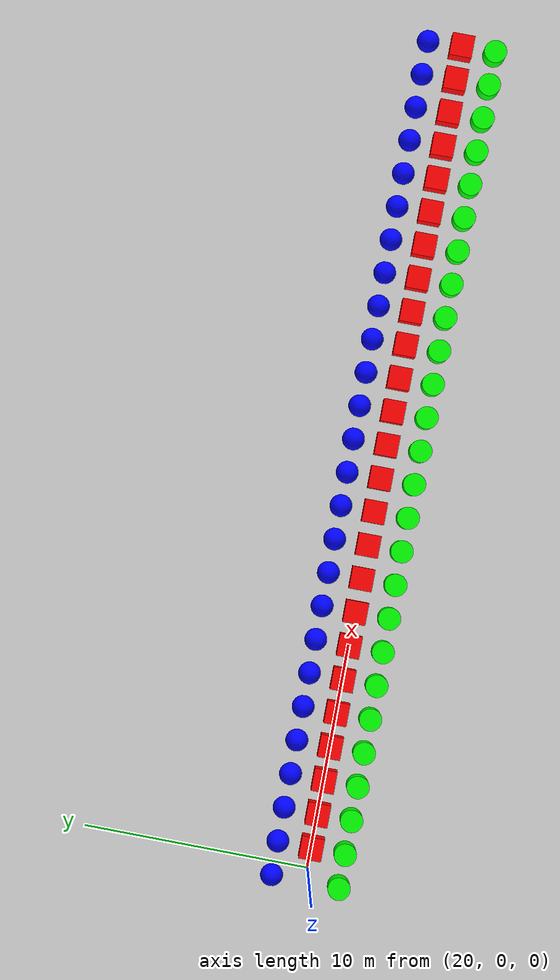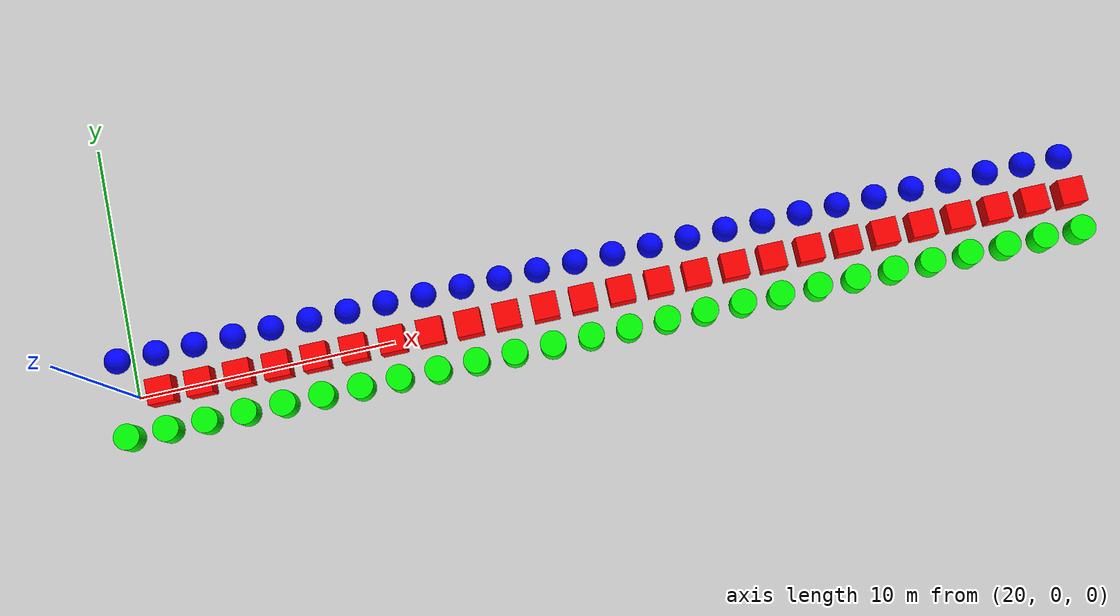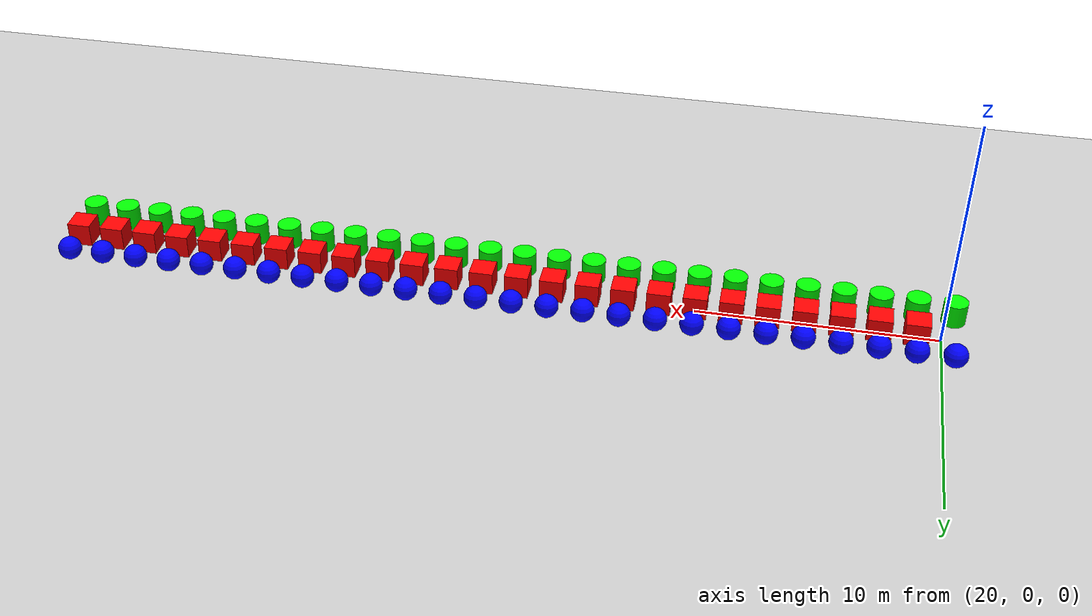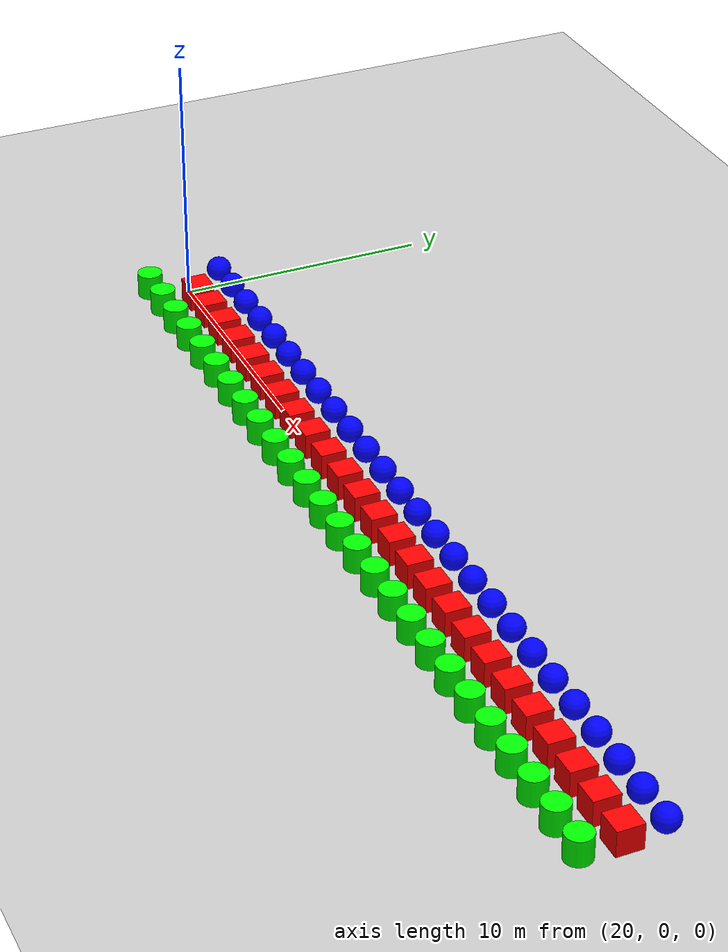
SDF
<sdf version="1.6">
 <world name="shapes">
  <model name="ground_plane">
   <static>true</static>
   <link name="link">
    <collision name="collision">
     <geometry><plane><normal>0 0 1</normal><size>100 100</size></plane></geometry>
    </collision>
    <visual name="visual">
     <geometry><plane><normal>0 0 1</normal><size>100 100</size></plane></geometry>
     <material>
      <ambient>0.8 0.8 0.8 1</ambient>
      <diffuse>0.8 0.8 0.8 1</diffuse>
      <specular>0.8 0.8 0.8 1</specular>
     </material>
    </visual>
   </link>
  </model>
  <model name="cylinder_513">
   <static>false</static>
   <pose>19.5 -1.5 0.5 0 0 0</pose>
   <link name="cylinder_link">
    <inertial>
     <inertia><ixx>2</ixx><ixy>0</ixy><ixz>0</ixz><iyy>2</iyy><iyz>0</iyz><izz>2</izz></inertia>
     <mass>2.0</mass>
    </inertial>
    <collision name="cylinder_collision">
     <geometry><cylinder><radius>0.5</radius><length>1.0</length></cylinder></geometry>
    </collision>
    <visual name="cylinder_visual">
     <geometry><cylinder><radius>0.5</radius><length>1.0</length></cylinder></geometry>
     <material><ambient>0 1 0 1</ambient><diffuse>0 1 0 1</diffuse><specular>0 1 0 1</specular></material>
    </visual>
   </link>
  </model>
  <model name="sphere_513">
   <static>false</static>
   <pose>19.5 1.5 0.5 0 0 0</pose>
   <link name="sphere_link">
    <inertial>
     <inertia><ixx>3</ixx><ixy>0</ixy><ixz>0</ixz><iyy>3</iyy><iyz>0</iyz><izz>3</izz></inertia>
     <mass>3.0</mass>
    </inertial>
    <collision name="sphere_collision"><geometry><sphere><radius>0.5</radius></sphere></geometry></collision>
    <visual name="sphere_visual">
     <geometry><sphere><radius>0.5</radius></sphere></geometry>
     <material><ambient>0 0 1 1</ambient><diffuse>0 0 1 1</diffuse><specular>0 0 1 1</specular></material>
    </visual>
   </link>
  </model>
  <model name="box_514">
   <static>false</static>
   <pose>21.0 0 0.5 0 0 0</pose>
   <link name="box_link">
    <inertial>
     <inertia><ixx>1</ixx><ixy>0</ixy><ixz>0</ixz><iyy>1</iyy><iyz>0</iyz><izz>1</izz></inertia>
     <mass>1.0</mass>
    </inertial>
    <collision name="box_collision"><geometry><box><size>1 1 1</size></box></geometry></collision>
    <visual name="box_visual">
     <geometry><box><size>1 1 1</size></box></geometry>
     <material><ambient>1 0 0 1</ambient><diffuse>1 0 0 1</diffuse><specular>1 0 0 1</specular></material>
    </visual>
   </link>
  </model>
  <model name="cylinder_514">
   <static>false</static>
   <pose>21.0 -1.5 0.5 0 0 0</pose>
   <link name="cylinder_link">
    <inertial>
     <inertia><ixx>2</ixx><ixy>0</ixy><ixz>0</ixz><iyy>2</iyy><iyz>0</iyz><izz>2</izz></inertia>
     <mass>2.0</mass>
    </inertial>
    <collision name="cylinder_collision">
     <geometry><cylinder><radius>0.5</radius><length>1.0</length></cylinder></geometry>
    </collision>
    <visual name="cylinder_visual">
     <geometry><cylinder><radius>0.5</radius><length>1.0</length></cylinder></geometry>
     <material><ambient>0 1 0 1</ambient><diffuse>0 1 0 1</diffuse><specular>0 1 0 1</specular></material>
    </visual>
   </link>
  </model>
  <model name="sphere_514">
   <static>false</static>
   <pose>21.0 1.5 0.5 0 0 0</pose>
   <link name="sphere_link">
    <inertial>
     <inertia><ixx>3</ixx><ixy>0</ixy><ixz>0</ixz><iyy>3</iyy><iyz>0</iyz><izz>3</izz></inertia>
     <mass>3.0</mass>
    </inertial>
    <collision name="sphere_collision"><geometry><sphere><radius>0.5</radius></sphere></geometry></collision>
    <visual name="sphere_visual">
     <geometry><sphere><radius>0.5</radius></sphere></geometry>
     <material><ambient>0 0 1 1</ambient><diffuse>0 0 1 1</diffuse><specular>0 0 1 1</specular></material>
    </visual>
   </link>
  </model>
  <model name="box_515">
   <static>false</static>
   <pose>22.5 0 0.5 0 0 0</pose>
   <link name="box_link">
    <inertial>
     <inertia><ixx>1</ixx><ixy>0</ixy><ixz>0</ixz><iyy>1</iyy><iyz>0</iyz><izz>1</izz></inertia>
     <mass>1.0</mass>
    </inertial>
    <collision name="box_collision"><geometry><box><size>1 1 1</size></box></geometry></collision>
    <visual name="box_visual">
     <geometry><box><size>1 1 1</size></box></geometry>
     <material><ambient>1 0 0 1</ambient><diffuse>1 0 0 1</diffuse><specular>1 0 0 1</specular></material>
    </visual>
   </link>
  </model>
  <model name="cylinder_515">
   <static>false</static>
   <pose>22.5 -1.5 0.5 0 0 0</pose>
   <link name="cylinder_link">
    <inertial>
     <inertia><ixx>2</ixx><ixy>0</ixy><ixz>0</ixz><iyy>2</iyy><iyz>0</iyz><izz>2</izz></inertia>
     <mass>2.0</mass>
    </inertial>
    <collision name="cylinder_collision">
     <geometry><cylinder><radius>0.5</radius><length>1.0</length></cylinder></geometry>
    </collision>
    <visual name="cylinder_visual">
     <geometry><cylinder><radius>0.5</radius><length>1.0</length></cylinder></geometry>
     <material><ambient>0 1 0 1</ambient><diffuse>0 1 0 1</diffuse><specular>0 1 0 1</specular></material>
    </visual>
   </link>
  </model>
  <model name="sphere_515">
   <static>false</static>
   <pose>22.5 1.5 0.5 0 0 0</pose>
   <link name="sphere_link">
    <inertial>
     <inertia><ixx>3</ixx><ixy>0</ixy><ixz>0</ixz><iyy>3</iyy><iyz>0</iyz><izz>3</izz></inertia>
     <mass>3.0</mass>
    </inertial>
    <collision name="sphere_collision"><geometry><sphere><radius>0.5</radius></sphere></geometry></collision>
    <visual name="sphere_visual">
     <geometry><sphere><radius>0.5</radius></sphere></geometry>
     <material><ambient>0 0 1 1</ambient><diffuse>0 0 1 1</diffuse><specular>0 0 1 1</specular></material>
    </visual>
   </link>
  </model>
  <model name="box_516">
   <static>false</static>
   <pose>24.0 0 0.5 0 0 0</pose>
   <link name="box_link">
    <inertial>
     <inertia><ixx>1</ixx><ixy>0</ixy><ixz>0</ixz><iyy>1</iyy><iyz>0</iyz><izz>1</izz></inertia>
     <mass>1.0</mass>
    </inertial>
    <collision name="box_collision"><geometry><box><size>1 1 1</size></box></geometry></collision>
    <visual name="box_visual">
     <geometry><box><size>1 1 1</size></box></geometry>
     <material><ambient>1 0 0 1</ambient><diffuse>1 0 0 1</diffuse><specular>1 0 0 1</specular></material>
    </visual>
   </link>
  </model>
  <model name="cylinder_516">
   <static>false</static>
   <pose>24.0 -1.5 0.5 0 0 0</pose>
   <link name="cylinder_link">
    <inertial>
     <inertia><ixx>2</ixx><ixy>0</ixy><ixz>0</ixz><iyy>2</iyy><iyz>0</iyz><izz>2</izz></inertia>
     <mass>2.0</mass>
    </inertial>
    <collision name="cylinder_collision">
     <geometry><cylinder><radius>0.5</radius><length>1.0</length></cylinder></geometry>
    </collision>
    <visual name="cylinder_visual">
     <geometry><cylinder><radius>0.5</radius><length>1.0</length></cylinder></geometry>
     <material><ambient>0 1 0 1</ambient><diffuse>0 1 0 1</diffuse><specular>0 1 0 1</specular></material>
    </visual>
   </link>
  </model>
  <model name="sphere_516">
   <static>false</static>
   <pose>24.0 1.5 0.5 0 0 0</pose>
   <link name="sphere_link">
    <inertial>
     <inertia><ixx>3</ixx><ixy>0</ixy><ixz>0</ixz><iyy>3</iyy><iyz>0</iyz><izz>3</izz></inertia>
     <mass>3.0</mass>
    </inertial>
    <collision name="sphere_collision"><geometry><sphere><radius>0.5</radius></sphere></geometry></collision>
    <visual name="sphere_visual">
     <geometry><sphere><radius>0.5</radius></sphere></geometry>
     <material><ambient>0 0 1 1</ambient><diffuse>0 0 1 1</diffuse><specular>0 0 1 1</specular></material>
    </visual>
   </link>
  </model>
  <model name="box_517">
   <static>false</static>
   <pose>25.5 0 0.5 0 0 0</pose>
   <link name="box_link">
    <inertial>
     <inertia><ixx>1</ixx><ixy>0</ixy><ixz>0</ixz><iyy>1</iyy><iyz>0</iyz><izz>1</izz></inertia>
     <mass>1.0</mass>
    </inertial>
    <collision name="box_collision"><geometry><box><size>1 1 1</size></box></geometry></collision>
    <visual name="box_visual">
     <geometry><box><size>1 1 1</size></box></geometry>
     <material><ambient>1 0 0 1</ambient><diffuse>1 0 0 1</diffuse><specular>1 0 0 1</specular></material>
    </visual>
   </link>
  </model>
  <model name="cylinder_517">
   <static>false</static>
   <pose>25.5 -1.5 0.5 0 0 0</pose>
   <link name="cylinder_link">
    <inertial>
     <inertia><ixx>2</ixx><ixy>0</ixy><ixz>0</ixz><iyy>2</iyy><iyz>0</iyz><izz>2</izz></inertia>
     <mass>2.0</mass>
    </inertial>
    <collision name="cylinder_collision">
     <geometry><cylinder><radius>0.5</radius><length>1.0</length></cylinder></geometry>
    </collision>
    <visual name="cylinder_visual">
     <geometry><cylinder><radius>0.5</radius><length>1.0</length></cylinder></geometry>
     <material><ambient>0 1 0 1</ambient><diffuse>0 1 0 1</diffuse><specular>0 1 0 1</specular></material>
    </visual>
   </link>
  </model>
  <model name="sphere_517">
   <static>false</static>
   <pose>25.5 1.5 0.5 0 0 0</pose>
   <link name="sphere_link">
    <inertial>
     <inertia><ixx>3</ixx><ixy>0</ixy><ixz>0</ixz><iyy>3</iyy><iyz>0</iyz><izz>3</izz></inertia>
     <mass>3.0</mass>
    </inertial>
    <collision name="sphere_collision"><geometry><sphere><radius>0.5</radius></sphere></geometry></collision>
    <visual name="sphere_visual">
     <geometry><sphere><radius>0.5</radius></sphere></geometry>
     <material><ambient>0 0 1 1</ambient><diffuse>0 0 1 1</diffuse><specular>0 0 1 1</specular></material>
    </visual>
   </link>
  </model>
  <model name="box_518">
   <static>false</static>
   <pose>27.0 0 0.5 0 0 0</pose>
   <link name="box_link">
    <inertial>
     <inertia><ixx>1</ixx><ixy>0</ixy><ixz>0</ixz><iyy>1</iyy><iyz>0</iyz><izz>1</izz></inertia>
     <mass>1.0</mass>
    </inertial>
    <collision name="box_collision"><geometry><box><size>1 1 1</size></box></geometry></collision>
    <visual name="box_visual">
     <geometry><box><size>1 1 1</size></box></geometry>
     <material><ambient>1 0 0 1</ambient><diffuse>1 0 0 1</diffuse><specular>1 0 0 1</specular></material>
    </visual>
   </link>
  </model>
  <model name="cylinder_518">
   <static>false</static>
   <pose>27.0 -1.5 0.5 0 0 0</pose>
   <link name="cylinder_link">
    <inertial>
     <inertia><ixx>2</ixx><ixy>0</ixy><ixz>0</ixz><iyy>2</iyy><iyz>0</iyz><izz>2</izz></inertia>
     <mass>2.0</mass>
    </inertial>
    <collision name="cylinder_collision">
     <geometry><cylinder><radius>0.5</radius><length>1.0</length></cylinder></geometry>
    </collision>
    <visual name="cylinder_visual">
     <geometry><cylinder><radius>0.5</radius><length>1.0</length></cylinder></geometry>
     <material><ambient>0 1 0 1</ambient><diffuse>0 1 0 1</diffuse><specular>0 1 0 1</specular></material>
    </visual>
   </link>
  </model>
  <model name="sphere_518">
   <static>false</static>
   <pose>27.0 1.5 0.5 0 0 0</pose>
   <link name="sphere_link">
    <inertial>
     <inertia><ixx>3</ixx><ixy>0</ixy><ixz>0</ixz><iyy>3</iyy><iyz>0</iyz><izz>3</izz></inertia>
     <mass>3.0</mass>
    </inertial>
    <collision name="sphere_collision"><geometry><sphere><radius>0.5</radius></sphere></geometry></collision>
    <visual name="sphere_visual">
     <geometry><sphere><radius>0.5</radius></sphere></geometry>
     <material><ambient>0 0 1 1</ambient><diffuse>0 0 1 1</diffuse><specular>0 0 1 1</specular></material>
    </visual>
   </link>
  </model>
  <model name="box_519">
   <static>false</static>
   <pose>28.5 0 0.5 0 0 0</pose>
   <link name="box_link">
    <inertial>
     <inertia><ixx>1</ixx><ixy>0</ixy><ixz>0</ixz><iyy>1</iyy><iyz>0</iyz><izz>1</izz></inertia>
     <mass>1.0</mass>
    </inertial>
    <collision name="box_collision"><geometry><box><size>1 1 1</size></box></geometry></collision>
    <visual name="box_visual">
     <geometry><box><size>1 1 1</size></box></geometry>
     <material><ambient>1 0 0 1</ambient><diffuse>1 0 0 1</diffuse><specular>1 0 0 1</specular></material>
    </visual>
   </link>
  </model>
  <model name="cylinder_519">
   <static>false</static>
   <pose>28.5 -1.5 0.5 0 0 0</pose>
   <link name="cylinder_link">
    <inertial>
     <inertia><ixx>2</ixx><ixy>0</ixy><ixz>0</ixz><iyy>2</iyy><iyz>0</iyz><izz>2</izz></inertia>
     <mass>2.0</mass>
    </inertial>
    <collision name="cylinder_collision">
     <geometry><cylinder><radius>0.5</radius><length>1.0</length></cylinder></geometry>
    </collision>
    <visual name="cylinder_visual">
     <geometry><cylinder><radius>0.5</radius><length>1.0</length></cylinder></geometry>
     <material><ambient>0 1 0 1</ambient><diffuse>0 1 0 1</diffuse><specular>0 1 0 1</specular></material>
    </visual>
   </link>
  </model>
  <model name="sphere_519">
   <static>false</static>
   <pose>28.5 1.5 0.5 0 0 0</pose>
   <link name="sphere_link">
    <inertial>
     <inertia><ixx>3</ixx><ixy>0</ixy><ixz>0</ixz><iyy>3</iyy><iyz>0</iyz><izz>3</izz></inertia>
     <mass>3.0</mass>
    </inertial>
    <collision name="sphere_collision"><geometry><sphere><radius>0.5</radius></sphere></geometry></collision>
    <visual name="sphere_visual">
     <geometry><sphere><radius>0.5</radius></sphere></geometry>
     <material><ambient>0 0 1 1</ambient><diffuse>0 0 1 1</diffuse><specular>0 0 1 1</specular></material>
    </visual>
   </link>
  </model>
  <model name="box_520">
   <static>false</static>
   <pose>30.0 0 0.5 0 0 0</pose>
   <link name="box_link">
    <inertial>
     <inertia><ixx>1</ixx><ixy>0</ixy><ixz>0</ixz><iyy>1</iyy><iyz>0</iyz><izz>1</izz></inertia>
     <mass>1.0</mass>
    </inertial>
    <collision name="box_collision"><geometry><box><size>1 1 1</size></box></geometry></collision>
    <visual name="box_visual">
     <geometry><box><size>1 1 1</size></box></geometry>
     <material><ambient>1 0 0 1</ambient><diffuse>1 0 0 1</diffuse><specular>1 0 0 1</specular></material>
    </visual>
   </link>
  </model>
  <model name="cylinder_520">
   <static>false</static>
   <pose>30.0 -1.5 0.5 0 0 0</pose>
   <link name="cylinder_link">
    <inertial>
     <inertia><ixx>2</ixx><ixy>0</ixy><ixz>0</ixz><iyy>2</iyy><iyz>0</iyz><izz>2</izz></inertia>
     <mass>2.0</mass>
    </inertial>
    <collision name="cylinder_collision">
     <geometry><cylinder><radius>0.5</radius><length>1.0</length></cylinder></geometry>
    </collision>
    <visual name="cylinder_visual">
     <geometry><cylinder><radius>0.5</radius><length>1.0</length></cylinder></geometry>
     <material><ambient>0 1 0 1</ambient><diffuse>0 1 0 1</diffuse><specular>0 1 0 1</specular></material>
    </visual>
   </link>
  </model>
  <model name="sphere_520">
   <static>false</static>
   <pose>30.0 1.5 0.5 0 0 0</pose>
   <link name="sphere_link">
    <inertial>
     <inertia><ixx>3</ixx><ixy>0</ixy><ixz>0</ixz><iyy>3</iyy><iyz>0</iyz><izz>3</izz></inertia>
     <mass>3.0</mass>
    </inertial>
    <collision name="sphere_collision"><geometry><sphere><radius>0.5</radius></sphere></geometry></collision>
    <visual name="sphere_visual">
     <geometry><sphere><radius>0.5</radius></sphere></geometry>
     <material><ambient>0 0 1 1</ambient><diffuse>0 0 1 1</diffuse><specular>0 0 1 1</specular></material>
    </visual>
   </link>
  </model>
  <model name="box_521">
   <static>false</static>
   <pose>31.5 0 0.5 0 0 0</pose>
   <link name="box_link">
    <inertial>
     <inertia><ixx>1</ixx><ixy>0</ixy><ixz>0</ixz><iyy>1</iyy><iyz>0</iyz><izz>1</izz></inertia>
     <mass>1.0</mass>
    </inertial>
    <collision name="box_collision"><geometry><box><size>1 1 1</size></box></geometry></collision>
    <visual name="box_visual">
     <geometry><box><size>1 1 1</size></box></geometry>
     <material><ambient>1 0 0 1</ambient><diffuse>1 0 0 1</diffuse><specular>1 0 0 1</specular></material>
    </visual>
   </link>
  </model>
  <model name="cylinder_521">
   <static>false</static>
   <pose>31.5 -1.5 0.5 0 0 0</pose>
   <link name="cylinder_link">
    <inertial>
     <inertia><ixx>2</ixx><ixy>0</ixy><ixz>0</ixz><iyy>2</iyy><iyz>0</iyz><izz>2</izz></inertia>
     <mass>2.0</mass>
    </inertial>
    <collision name="cylinder_collision">
     <geometry><cylinder><radius>0.5</radius><length>1.0</length></cylinder></geometry>
    </collision>
    <visual name="cylinder_visual">
     <geometry><cylinder><radius>0.5</radius><length>1.0</length></cylinder></geometry>
     <material><ambient>0 1 0 1</ambient><diffuse>0 1 0 1</diffuse><specular>0 1 0 1</specular></material>
    </visual>
   </link>
  </model>
  <model name="sphere_521">
   <static>false</static>
   <pose>31.5 1.5 0.5 0 0 0</pose>
   <link name="sphere_link">
    <inertial>
     <inertia><ixx>3</ixx><ixy>0</ixy><ixz>0</ixz><iyy>3</iyy><iyz>0</iyz><izz>3</izz></inertia>
     <mass>3.0</mass>
    </inertial>
    <collision name="sphere_collision"><geometry><sphere><radius>0.5</radius></sphere></geometry></collision>
    <visual name="sphere_visual">
     <geometry><sphere><radius>0.5</radius></sphere></geometry>
     <material><ambient>0 0 1 1</ambient><diffuse>0 0 1 1</diffuse><specular>0 0 1 1</specular></material>
    </visual>
   </link>
  </model>
  <model name="box_522">
   <static>false</static>
   <pose>33.0 0 0.5 0 0 0</pose>
   <link name="box_link">
    <inertial>
     <inertia><ixx>1</ixx><ixy>0</ixy><ixz>0</ixz><iyy>1</iyy><iyz>0</iyz><izz>1</izz></inertia>
     <mass>1.0</mass>
    </inertial>
    <collision name="box_collision"><geometry><box><size>1 1 1</size></box></geometry></collision>
    <visual name="box_visual">
     <geometry><box><size>1 1 1</size></box></geometry>
     <material><ambient>1 0 0 1</ambient><diffuse>1 0 0 1</diffuse><specular>1 0 0 1</specular></material>
    </visual>
   </link>
  </model>
  <model name="cylinder_522">
   <static>false</static>
   <pose>33.0 -1.5 0.5 0 0 0</pose>
   <link name="cylinder_link">
    <inertial>
     <inertia><ixx>2</ixx><ixy>0</ixy><ixz>0</ixz><iyy>2</iyy><iyz>0</iyz><izz>2</izz></inertia>
     <mass>2.0</mass>
    </inertial>
    <collision name="cylinder_collision">
     <geometry><cylinder><radius>0.5</radius><length>1.0</length></cylinder></geometry>
    </collision>
    <visual name="cylinder_visual">
     <geometry><cylinder><radius>0.5</radius><length>1.0</length></cylinder></geometry>
     <material><ambient>0 1 0 1</ambient><diffuse>0 1 0 1</diffuse><specular>0 1 0 1</specular></material>
    </visual>
   </link>
  </model>
  <model name="sphere_522">
   <static>false</static>
   <pose>33.0 1.5 0.5 0 0 0</pose>
   <link name="sphere_link">
    <inertial>
     <inertia><ixx>3</ixx><ixy>0</ixy><ixz>0</ixz><iyy>3</iyy><iyz>0</iyz><izz>3</izz></inertia>
     <mass>3.0</mass>
    </inertial>
    <collision name="sphere_collision"><geometry><sphere><radius>0.5</radius></sphere></geometry></collision>
    <visual name="sphere_visual">
     <geometry><sphere><radius>0.5</radius></sphere></geometry>
     <material><ambient>0 0 1 1</ambient><diffuse>0 0 1 1</diffuse><specular>0 0 1 1</specular></material>
    </visual>
   </link>
  </model>
  <model name="box_523">
   <static>false</static>
   <pose>34.5 0 0.5 0 0 0</pose>
   <link name="box_link">
    <inertial>
     <inertia><ixx>1</ixx><ixy>0</ixy><ixz>0</ixz><iyy>1</iyy><iyz>0</iyz><izz>1</izz></inertia>
     <mass>1.0</mass>
    </inertial>
    <collision name="box_collision"><geometry><box><size>1 1 1</size></box></geometry></collision>
    <visual name="box_visual">
     <geometry><box><size>1 1 1</size></box></geometry>
     <material><ambient>1 0 0 1</ambient><diffuse>1 0 0 1</diffuse><specular>1 0 0 1</specular></material>
    </visual>
   </link>
  </model>
  <model name="cylinder_523">
   <static>false</static>
   <pose>34.5 -1.5 0.5 0 0 0</pose>
   <link name="cylinder_link">
    <inertial>
     <inertia><ixx>2</ixx><ixy>0</ixy><ixz>0</ixz><iyy>2</iyy><iyz>0</iyz><izz>2</izz></inertia>
     <mass>2.0</mass>
    </inertial>
    <collision name="cylinder_collision">
     <geometry><cylinder><radius>0.5</radius><length>1.0</length></cylinder></geometry>
    </collision>
    <visual name="cylinder_visual">
     <geometry><cylinder><radius>0.5</radius><length>1.0</length></cylinder></geometry>
     <material><ambient>0 1 0 1</ambient><diffuse>0 1 0 1</diffuse><specular>0 1 0 1</specular></material>
    </visual>
   </link>
  </model>
  <model name="sphere_523">
   <static>false</static>
   <pose>34.5 1.5 0.5 0 0 0</pose>
   <link name="sphere_link">
    <inertial>
     <inertia><ixx>3</ixx><ixy>0</ixy><ixz>0</ixz><iyy>3</iyy><iyz>0</iyz><izz>3</izz></inertia>
     <mass>3.0</mass>
    </inertial>
    <collision name="sphere_collision"><geometry><sphere><radius>0.5</radius></sphere></geometry></collision>
    <visual name="sphere_visual">
     <geometry><sphere><radius>0.5</radius></sphere></geometry>
     <material><ambient>0 0 1 1</ambient><diffuse>0 0 1 1</diffuse><specular>0 0 1 1</specular></material>
    </visual>
   </link>
  </model>
  <model name="box_524">
   <static>false</static>
   <pose>36.0 0 0.5 0 0 0</pose>
   <link name="box_link">
    <inertial>
     <inertia><ixx>1</ixx><ixy>0</ixy><ixz>0</ixz><iyy>1</iyy><iyz>0</iyz><izz>1</izz></inertia>
     <mass>1.0</mass>
    </inertial>
    <collision name="box_collision"><geometry><box><size>1 1 1</size></box></geometry></collision>
    <visual name="box_visual">
     <geometry><box><size>1 1 1</size></box></geometry>
     <material><ambient>1 0 0 1</ambient><diffuse>1 0 0 1</diffuse><specular>1 0 0 1</specular></material>
    </visual>
   </link>
  </model>
  <model name="cylinder_524">
   <static>false</static>
   <pose>36.0 -1.5 0.5 0 0 0</pose>
   <link name="cylinder_link">
    <inertial>
     <inertia><ixx>2</ixx><ixy>0</ixy><ixz>0</ixz><iyy>2</iyy><iyz>0</iyz><izz>2</izz></inertia>
     <mass>2.0</mass>
    </inertial>
    <collision name="cylinder_collision">
     <geometry><cylinder><radius>0.5</radius><length>1.0</length></cylinder></geometry>
    </collision>
    <visual name="cylinder_visual">
     <geometry><cylinder><radius>0.5</radius><length>1.0</length></cylinder></geometry>
     <material><ambient>0 1 0 1</ambient><diffuse>0 1 0 1</diffuse><specular>0 1 0 1</specular></material>
    </visual>
   </link>
  </model>
  <model name="sphere_524">
   <static>false</static>
   <pose>36.0 1.5 0.5 0 0 0</pose>
   <link name="sphere_link">
    <inertial>
     <inertia><ixx>3</ixx><ixy>0</ixy><ixz>0</ixz><iyy>3</iyy><iyz>0</iyz><izz>3</izz></inertia>
     <mass>3.0</mass>
    </inertial>
    <collision name="sphere_collision"><geometry><sphere><radius>0.5</radius></sphere></geometry></collision>
    <visual name="sphere_visual">
     <geometry><sphere><radius>0.5</radius></sphere></geometry>
     <material><ambient>0 0 1 1</ambient><diffuse>0 0 1 1</diffuse><specular>0 0 1 1</specular></material>
    </visual>
   </link>
  </model>
  <model name="box_525">
   <static>false</static>
   <pose>37.5 0 0.5 0 0 0</pose>
   <link name="box_link">
    <inertial>
     <inertia><ixx>1</ixx><ixy>0</ixy><ixz>0</ixz><iyy>1</iyy><iyz>0</iyz><izz>1</izz></inertia>
     <mass>1.0</mass>
    </inertial>
    <collision name="box_collision"><geometry><box><size>1 1 1</size></box></geometry></collision>
    <visual name="box_visual">
     <geometry><box><size>1 1 1</size></box></geometry>
     <material><ambient>1 0 0 1</ambient><diffuse>1 0 0 1</diffuse><specular>1 0 0 1</specular></material>
    </visual>
   </link>
  </model>
  <model name="cylinder_525">
   <static>false</static>
   <pose>37.5 -1.5 0.5 0 0 0</pose>
   <link name="cylinder_link">
    <inertial>
     <inertia><ixx>2</ixx><ixy>0</ixy><ixz>0</ixz><iyy>2</iyy><iyz>0</iyz><izz>2</izz></inertia>
     <mass>2.0</mass>
    </inertial>
    <collision name="cylinder_collision">
     <geometry><cylinder><radius>0.5</radius><length>1.0</length></cylinder></geometry>
    </collision>
    <visual name="cylinder_visual">
     <geometry><cylinder><radius>0.5</radius><length>1.0</length></cylinder></geometry>
     <material><ambient>0 1 0 1</ambient><diffuse>0 1 0 1</diffuse><specular>0 1 0 1</specular></material>
    </visual>
   </link>
  </model>
  <model name="sphere_525">
   <static>false</static>
   <pose>37.5 1.5 0.5 0 0 0</pose>
   <link name="sphere_link">
    <inertial>
     <inertia><ixx>3</ixx><ixy>0</ixy><ixz>0</ixz><iyy>3</iyy><iyz>0</iyz><izz>3</izz></inertia>
     <mass>3.0</mass>
    </inertial>
    <collision name="sphere_collision"><geometry><sphere><radius>0.5</radius></sphere></geometry></collision>
    <visual name="sphere_visual">
     <geometry><sphere><radius>0.5</radius></sphere></geometry>
     <material><ambient>0 0 1 1</ambient><diffuse>0 0 1 1</diffuse><specular>0 0 1 1</specular></material>
    </visual>
   </link>
  </model>
  <model name="box_526">
   <static>false</static>
   <pose>39.0 0 0.5 0 0 0</pose>
   <link name="box_link">
    <inertial>
     <inertia><ixx>1</ixx><ixy>0</ixy><ixz>0</ixz><iyy>1</iyy><iyz>0</iyz><izz>1</izz></inertia>
     <mass>1.0</mass>
    </inertial>
    <collision name="box_collision"><geometry><box><size>1 1 1</size></box></geometry></collision>
    <visual name="box_visual">
     <geometry><box><size>1 1 1</size></box></geometry>
     <material><ambient>1 0 0 1</ambient><diffuse>1 0 0 1</diffuse><specular>1 0 0 1</specular></material>
    </visual>
   </link>
  </model>
  <model name="cylinder_526">
   <static>false</static>
   <pose>39.0 -1.5 0.5 0 0 0</pose>
   <link name="cylinder_link">
    <inertial>
     <inertia><ixx>2</ixx><ixy>0</ixy><ixz>0</ixz><iyy>2</iyy><iyz>0</iyz><izz>2</izz></inertia>
     <mass>2.0</mass>
    </inertial>
    <collision name="cylinder_collision">
     <geometry><cylinder><radius>0.5</radius><length>1.0</length></cylinder></geometry>
    </collision>
    <visual name="cylinder_visual">
     <geometry><cylinder><radius>0.5</radius><length>1.0</length></cylinder></geometry>
     <material><ambient>0 1 0 1</ambient><diffuse>0 1 0 1</diffuse><specular>0 1 0 1</specular></material>
    </visual>
   </link>
  </model>
  <model name="sphere_526">
   <static>false</static>
   <pose>39.0 1.5 0.5 0 0 0</pose>
   <link name="sphere_link">
    <inertial>
     <inertia><ixx>3</ixx><ixy>0</ixy><ixz>0</ixz><iyy>3</iyy><iyz>0</iyz><izz>3</izz></inertia>
     <mass>3.0</mass>
    </inertial>
    <collision name="sphere_collision"><geometry><sphere><radius>0.5</radius></sphere></geometry></collision>
    <visual name="sphere_visual">
     <geometry><sphere><radius>0.5</radius></sphere></geometry>
     <material><ambient>0 0 1 1</ambient><diffuse>0 0 1 1</diffuse><specular>0 0 1 1</specular></material>
    </visual>
   </link>
  </model>
  <model name="box_527">
   <static>false</static>
   <pose>40.5 0 0.5 0 0 0</pose>
   <link name="box_link">
    <inertial>
     <inertia><ixx>1</ixx><ixy>0</ixy><ixz>0</ixz><iyy>1</iyy><iyz>0</iyz><izz>1</izz></inertia>
     <mass>1.0</mass>
    </inertial>
    <collision name="box_collision"><geometry><box><size>1 1 1</size></box></geometry></collision>
    <visual name="box_visual">
     <geometry><box><size>1 1 1</size></box></geometry>
     <material><ambient>1 0 0 1</ambient><diffuse>1 0 0 1</diffuse><specular>1 0 0 1</specular></material>
    </visual>
   </link>
  </model>
  <model name="cylinder_527">
   <static>false</static>
   <pose>40.5 -1.5 0.5 0 0 0</pose>
   <link name="cylinder_link">
    <inertial>
     <inertia><ixx>2</ixx><ixy>0</ixy><ixz>0</ixz><iyy>2</iyy><iyz>0</iyz><izz>2</izz></inertia>
     <mass>2.0</mass>
    </inertial>
    <collision name="cylinder_collision">
     <geometry><cylinder><radius>0.5</radius><length>1.0</length></cylinder></geometry>
    </collision>
    <visual name="cylinder_visual">
     <geometry><cylinder><radius>0.5</radius><length>1.0</length></cylinder></geometry>
     <material><ambient>0 1 0 1</ambient><diffuse>0 1 0 1</diffuse><specular>0 1 0 1</specular></material>
    </visual>
   </link>
  </model>
  <model name="sphere_527">
   <static>false</static>
   <pose>40.5 1.5 0.5 0 0 0</pose>
   <link name="sphere_link">
    <inertial>
     <inertia><ixx>3</ixx><ixy>0</ixy><ixz>0</ixz><iyy>3</iyy><iyz>0</iyz><izz>3</izz></inertia>
     <mass>3.0</mass>
    </inertial>
    <collision name="sphere_collision"><geometry><sphere><radius>0.5</radius></sphere></geometry></collision>
    <visual name="sphere_visual">
     <geometry><sphere><radius>0.5</radius></sphere></geometry>
     <material><ambient>0 0 1 1</ambient><diffuse>0 0 1 1</diffuse><specular>0 0 1 1</specular></material>
    </visual>
   </link>
  </model>
  <model name="box_528">
   <static>false</static>
   <pose>42.0 0 0.5 0 0 0</pose>
   <link name="box_link">
    <inertial>
     <inertia><ixx>1</ixx><ixy>0</ixy><ixz>0</ixz><iyy>1</iyy><iyz>0</iyz><izz>1</izz></inertia>
     <mass>1.0</mass>
    </inertial>
    <collision name="box_collision"><geometry><box><size>1 1 1</size></box></geometry></collision>
    <visual name="box_visual">
     <geometry><box><size>1 1 1</size></box></geometry>
     <material><ambient>1 0 0 1</ambient><diffuse>1 0 0 1</diffuse><specular>1 0 0 1</specular></material>
    </visual>
   </link>
  </model>
  <model name="cylinder_528">
   <static>false</static>
   <pose>42.0 -1.5 0.5 0 0 0</pose>
   <link name="cylinder_link">
    <inertial>
     <inertia><ixx>2</ixx><ixy>0</ixy><ixz>0</ixz><iyy>2</iyy><iyz>0</iyz><izz>2</izz></inertia>
     <mass>2.0</mass>
    </inertial>
    <collision name="cylinder_collision">
     <geometry><cylinder><radius>0.5</radius><length>1.0</length></cylinder></geometry>
    </collision>
    <visual name="cylinder_visual">
     <geometry><cylinder><radius>0.5</radius><length>1.0</length></cylinder></geometry>
     <material><ambient>0 1 0 1</ambient><diffuse>0 1 0 1</diffuse><specular>0 1 0 1</specular></material>
    </visual>
   </link>
  </model>
  <model name="sphere_528">
   <static>false</static>
   <pose>42.0 1.5 0.5 0 0 0</pose>
   <link name="sphere_link">
    <inertial>
     <inertia><ixx>3</ixx><ixy>0</ixy><ixz>0</ixz><iyy>3</iyy><iyz>0</iyz><izz>3</izz></inertia>
     <mass>3.0</mass>
    </inertial>
    <collision name="sphere_collision"><geometry><sphere><radius>0.5</radius></sphere></geometry></collision>
    <visual name="sphere_visual">
     <geometry><sphere><radius>0.5</radius></sphere></geometry>
     <material><ambient>0 0 1 1</ambient><diffuse>0 0 1 1</diffuse><specular>0 0 1 1</specular></material>
    </visual>
   </link>
  </model>
  <model name="box_529">
   <static>false</static>
   <pose>43.5 0 0.5 0 0 0</pose>
   <link name="box_link">
    <inertial>
     <inertia><ixx>1</ixx><ixy>0</ixy><ixz>0</ixz><iyy>1</iyy><iyz>0</iyz><izz>1</izz></inertia>
     <mass>1.0</mass>
    </inertial>
    <collision name="box_collision"><geometry><box><size>1 1 1</size></box></geometry></collision>
    <visual name="box_visual">
     <geometry><box><size>1 1 1</size></box></geometry>
     <material><ambient>1 0 0 1</ambient><diffuse>1 0 0 1</diffuse><specular>1 0 0 1</specular></material>
    </visual>
   </link>
  </model>
  <model name="cylinder_529">
   <static>false</static>
   <pose>43.5 -1.5 0.5 0 0 0</pose>
   <link name="cylinder_link">
    <inertial>
     <inertia><ixx>2</ixx><ixy>0</ixy><ixz>0</ixz><iyy>2</iyy><iyz>0</iyz><izz>2</izz></inertia>
     <mass>2.0</mass>
    </inertial>
    <collision name="cylinder_collision">
     <geometry><cylinder><radius>0.5</radius><length>1.0</length></cylinder></geometry>
    </collision>
    <visual name="cylinder_visual">
     <geometry><cylinder><radius>0.5</radius><length>1.0</length></cylinder></geometry>
     <material><ambient>0 1 0 1</ambient><diffuse>0 1 0 1</diffuse><specular>0 1 0 1</specular></material>
    </visual>
   </link>
  </model>
  <model name="sphere_529">
   <static>false</static>
   <pose>43.5 1.5 0.5 0 0 0</pose>
   <link name="sphere_link">
    <inertial>
     <inertia><ixx>3</ixx><ixy>0</ixy><ixz>0</ixz><iyy>3</iyy><iyz>0</iyz><izz>3</izz></inertia>
     <mass>3.0</mass>
    </inertial>
    <collision name="sphere_collision"><geometry><sphere><radius>0.5</radius></sphere></geometry></collision>
    <visual name="sphere_visual">
     <geometry><sphere><radius>0.5</radius></sphere></geometry>
     <material><ambient>0 0 1 1</ambient><diffuse>0 0 1 1</diffuse><specular>0 0 1 1</specular></material>
    </visual>
   </link>
  </model>
  <model name="box_530">
   <static>false</static>
   <pose>45.0 0 0.5 0 0 0</pose>
   <link name="box_link">
    <inertial>
     <inertia><ixx>1</ixx><ixy>0</ixy><ixz>0</ixz><iyy>1</iyy><iyz>0</iyz><izz>1</izz></inertia>
     <mass>1.0</mass>
    </inertial>
    <collision name="box_collision"><geometry><box><size>1 1 1</size></box></geometry></collision>
    <visual name="box_visual">
     <geometry><box><size>1 1 1</size></box></geometry>
     <material><ambient>1 0 0 1</ambient><diffuse>1 0 0 1</diffuse><specular>1 0 0 1</specular></material>
    </visual>
   </link>
  </model>
  <model name="cylinder_530">
   <static>false</static>
   <pose>45.0 -1.5 0.5 0 0 0</pose>
   <link name="cylinder_link">
    <inertial>
     <inertia><ixx>2</ixx><ixy>0</ixy><ixz>0</ixz><iyy>2</iyy><iyz>0</iyz><izz>2</izz></inertia>
     <mass>2.0</mass>
    </inertial>
    <collision name="cylinder_collision">
     <geometry><cylinder><radius>0.5</radius><length>1.0</length></cylinder></geometry>
    </collision>
    <visual name="cylinder_visual">
     <geometry><cylinder><radius>0.5</radius><length>1.0</length></cylinder></geometry>
     <material><ambient>0 1 0 1</ambient><diffuse>0 1 0 1</diffuse><specular>0 1 0 1</specular></material>
    </visual>
   </link>
  </model>
  <model name="sphere_530">
   <static>false</static>
   <pose>45.0 1.5 0.5 0 0 0</pose>
   <link name="sphere_link">
    <inertial>
     <inertia><ixx>3</ixx><ixy>0</ixy><ixz>0</ixz><iyy>3</iyy><iyz>0</iyz><izz>3</izz></inertia>
     <mass>3.0</mass>
    </inertial>
    <collision name="sphere_collision"><geometry><sphere><radius>0.5</radius></sphere></geometry></collision>
    <visual name="sphere_visual">
     <geometry><sphere><radius>0.5</radius></sphere></geometry>
     <material><ambient>0 0 1 1</ambient><diffuse>0 0 1 1</diffuse><specular>0 0 1 1</specular></material>
    </visual>
   </link>
  </model>
  <model name="box_531">
   <static>false</static>
   <pose>46.5 0 0.5 0 0 0</pose>
   <link name="box_link">
    <inertial>
     <inertia><ixx>1</ixx><ixy>0</ixy><ixz>0</ixz><iyy>1</iyy><iyz>0</iyz><izz>1</izz></inertia>
     <mass>1.0</mass>
    </inertial>
    <collision name="box_collision"><geometry><box><size>1 1 1</size></box></geometry></collision>
    <visual name="box_visual">
     <geometry><box><size>1 1 1</size></box></geometry>
     <material><ambient>1 0 0 1</ambient><diffuse>1 0 0 1</diffuse><specular>1 0 0 1</specular></material>
    </visual>
   </link>
  </model>
  <model name="cylinder_531">
   <static>false</static>
   <pose>46.5 -1.5 0.5 0 0 0</pose>
   <link name="cylinder_link">
    <inertial>
     <inertia><ixx>2</ixx><ixy>0</ixy><ixz>0</ixz><iyy>2</iyy><iyz>0</iyz><izz>2</izz></inertia>
     <mass>2.0</mass>
    </inertial>
    <collision name="cylinder_collision">
     <geometry><cylinder><radius>0.5</radius><length>1.0</length></cylinder></geometry>
    </collision>
    <visual name="cylinder_visual">
     <geometry><cylinder><radius>0.5</radius><length>1.0</length></cylinder></geometry>
     <material><ambient>0 1 0 1</ambient><diffuse>0 1 0 1</diffuse><specular>0 1 0 1</specular></material>
    </visual>
   </link>
  </model>
  <model name="sphere_531">
   <static>false</static>
   <pose>46.5 1.5 0.5 0 0 0</pose>
   <link name="sphere_link">
    <inertial>
     <inertia><ixx>3</ixx><ixy>0</ixy><ixz>0</ixz><iyy>3</iyy><iyz>0</iyz><izz>3</izz></inertia>
     <mass>3.0</mass>
    </inertial>
    <collision name="sphere_collision"><geometry><sphere><radius>0.5</radius></sphere></geometry></collision>
    <visual name="sphere_visual">
     <geometry><sphere><radius>0.5</radius></sphere></geometry>
     <material><ambient>0 0 1 1</ambient><diffuse>0 0 1 1</diffuse><specular>0 0 1 1</specular></material>
    </visual>
   </link>
  </model>
  <model name="box_532">
   <static>false</static>
   <pose>48.0 0 0.5 0 0 0</pose>
   <link name="box_link">
    <inertial>
     <inertia><ixx>1</ixx><ixy>0</ixy><ixz>0</ixz><iyy>1</iyy><iyz>0</iyz><izz>1</izz></inertia>
     <mass>1.0</mass>
    </inertial>
    <collision name="box_collision"><geometry><box><size>1 1 1</size></box></geometry></collision>
    <visual name="box_visual">
     <geometry><box><size>1 1 1</size></box></geometry>
     <material><ambient>1 0 0 1</ambient><diffuse>1 0 0 1</diffuse><specular>1 0 0 1</specular></material>
    </visual>
   </link>
  </model>
  <model name="cylinder_532">
   <static>false</static>
   <pose>48.0 -1.5 0.5 0 0 0</pose>
   <link name="cylinder_link">
    <inertial>
     <inertia><ixx>2</ixx><ixy>0</ixy><ixz>0</ixz><iyy>2</iyy><iyz>0</iyz><izz>2</izz></inertia>
     <mass>2.0</mass>
    </inertial>
    <collision name="cylinder_collision">
     <geometry><cylinder><radius>0.5</radius><length>1.0</length></cylinder></geometry>
    </collision>
    <visual name="cylinder_visual">
     <geometry><cylinder><radius>0.5</radius><length>1.0</length></cylinder></geometry>
     <material><ambient>0 1 0 1</ambient><diffuse>0 1 0 1</diffuse><specular>0 1 0 1</specular></material>
    </visual>
   </link>
  </model>
  <model name="sphere_532">
   <static>false</static>
   <pose>48.0 1.5 0.5 0 0 0</pose>
   <link name="sphere_link">
    <inertial>
     <inertia><ixx>3</ixx><ixy>0</ixy><ixz>0</ixz><iyy>3</iyy><iyz>0</iyz><izz>3</izz></inertia>
     <mass>3.0</mass>
    </inertial>
    <collision name="sphere_collision"><geometry><sphere><radius>0.5</radius></sphere></geometry></collision>
    <visual name="sphere_visual">
     <geometry><sphere><radius>0.5</radius></sphere></geometry>
     <material><ambient>0 0 1 1</ambient><diffuse>0 0 1 1</diffuse><specular>0 0 1 1</specular></material>
    </visual>
   </link>
  </model>
  <model name="box_533">
   <static>false</static>
   <pose>49.5 0 0.5 0 0 0</pose>
   <link name="box_link">
    <inertial>
     <inertia><ixx>1</ixx><ixy>0</ixy><ixz>0</ixz><iyy>1</iyy><iyz>0</iyz><izz>1</izz></inertia>
     <mass>1.0</mass>
    </inertial>
    <collision name="box_collision"><geometry><box><size>1 1 1</size></box></geometry></collision>
    <visual name="box_visual">
     <geometry><box><size>1 1 1</size></box></geometry>
     <material><ambient>1 0 0 1</ambient><diffuse>1 0 0 1</diffuse><specular>1 0 0 1</specular></material>
    </visual>
   </link>
  </model>
  <model name="cylinder_533">
   <static>false</static>
   <pose>49.5 -1.5 0.5 0 0 0</pose>
   <link name="cylinder_link">
    <inertial>
     <inertia><ixx>2</ixx><ixy>0</ixy><ixz>0</ixz><iyy>2</iyy><iyz>0</iyz><izz>2</izz></inertia>
     <mass>2.0</mass>
    </inertial>
    <collision name="cylinder_collision">
     <geometry><cylinder><radius>0.5</radius><length>1.0</length></cylinder></geometry>
    </collision>
    <visual name="cylinder_visual">
     <geometry><cylinder><radius>0.5</radius><length>1.0</length></cylinder></geometry>
     <material><ambient>0 1 0 1</ambient><diffuse>0 1 0 1</diffuse><specular>0 1 0 1</specular></material>
    </visual>
   </link>
  </model>
  <model name="sphere_533">
   <static>false</static>
   <pose>49.5 1.5 0.5 0 0 0</pose>
   <link name="sphere_link">
    <inertial>
     <inertia><ixx>3</ixx><ixy>0</ixy><ixz>0</ixz><iyy>3</iyy><iyz>0</iyz><izz>3</izz></inertia>
     <mass>3.0</mass>
    </inertial>
    <collision name="sphere_collision"><geometry><sphere><radius>0.5</radius></sphere></geometry></collision>
    <visual name="sphere_visual">
     <geometry><sphere><radius>0.5</radius></sphere></geometry>
     <material><ambient>0 0 1 1</ambient><diffuse>0 0 1 1</diffuse><specular>0 0 1 1</specular></material>
    </visual>
   </link>
  </model>
  <model name="box_534">
   <static>false</static>
   <pose>51.0 0 0.5 0 0 0</pose>
   <link name="box_link">
    <inertial>
     <inertia><ixx>1</ixx><ixy>0</ixy><ixz>0</ixz><iyy>1</iyy><iyz>0</iyz><izz>1</izz></inertia>
     <mass>1.0</mass>
    </inertial>
    <collision name="box_collision"><geometry><box><size>1 1 1</size></box></geometry></collision>
    <visual name="box_visual">
     <geometry><box><size>1 1 1</size></box></geometry>
     <material><ambient>1 0 0 1</ambient><diffuse>1 0 0 1</diffuse><specular>1 0 0 1</specular></material>
    </visual>
   </link>
  </model>
  <model name="cylinder_534">
   <static>false</static>
   <pose>51.0 -1.5 0.5 0 0 0</pose>
   <link name="cylinder_link">
    <inertial>
     <inertia><ixx>2</ixx><ixy>0</ixy><ixz>0</ixz><iyy>2</iyy><iyz>0</iyz><izz>2</izz></inertia>
     <mass>2.0</mass>
    </inertial>
    <collision name="cylinder_collision">
     <geometry><cylinder><radius>0.5</radius><length>1.0</length></cylinder></geometry>
    </collision>
    <visual name="cylinder_visual">
     <geometry><cylinder><radius>0.5</radius><length>1.0</length></cylinder></geometry>
     <material><ambient>0 1 0 1</ambient><diffuse>0 1 0 1</diffuse><specular>0 1 0 1</specular></material>
    </visual>
   </link>
  </model>
  <model name="sphere_534">
   <static>false</static>
   <pose>51.0 1.5 0.5 0 0 0</pose>
   <link name="sphere_link">
    <inertial>
     <inertia><ixx>3</ixx><ixy>0</ixy><ixz>0</ixz><iyy>3</iyy><iyz>0</iyz><izz>3</izz></inertia>
     <mass>3.0</mass>
    </inertial>
    <collision name="sphere_collision"><geometry><sphere><radius>0.5</radius></sphere></geometry></collision>
    <visual name="sphere_visual">
     <geometry><sphere><radius>0.5</radius></sphere></geometry>
     <material><ambient>0 0 1 1</ambient><diffuse>0 0 1 1</diffuse><specular>0 0 1 1</specular></material>
    </visual>
   </link>
  </model>
  <model name="box_535">
   <static>false</static>
   <pose>52.5 0 0.5 0 0 0</pose>
   <link name="box_link">
    <inertial>
     <inertia><ixx>1</ixx><ixy>0</ixy><ixz>0</ixz><iyy>1</iyy><iyz>0</iyz><izz>1</izz></inertia>
     <mass>1.0</mass>
    </inertial>
    <collision name="box_collision"><geometry><box><size>1 1 1</size></box></geometry></collision>
    <visual name="box_visual">
     <geometry><box><size>1 1 1</size></box></geometry>
     <material><ambient>1 0 0 1</ambient><diffuse>1 0 0 1</diffuse><specular>1 0 0 1</specular></material>
    </visual>
   </link>
  </model>
  <model name="cylinder_535">
   <static>false</static>
   <pose>52.5 -1.5 0.5 0 0 0</pose>
   <link name="cylinder_link">
    <inertial>
     <inertia><ixx>2</ixx><ixy>0</ixy><ixz>0</ixz><iyy>2</iyy><iyz>0</iyz><izz>2</izz></inertia>
     <mass>2.0</mass>
    </inertial>
    <collision name="cylinder_collision">
     <geometry><cylinder><radius>0.5</radius><length>1.0</length></cylinder></geometry>
    </collision>
    <visual name="cylinder_visual">
     <geometry><cylinder><radius>0.5</radius><length>1.0</length></cylinder></geometry>
     <material><ambient>0 1 0 1</ambient><diffuse>0 1 0 1</diffuse><specular>0 1 0 1</specular></material>
    </visual>
   </link>
  </model>
  <model name="sphere_535">
   <static>false</static>
   <pose>52.5 1.5 0.5 0 0 0</pose>
   <link name="sphere_link">
    <inertial>
     <inertia><ixx>3</ixx><ixy>0</ixy><ixz>0</ixz><iyy>3</iyy><iyz>0</iyz><izz>3</izz></inertia>
     <mass>3.0</mass>
    </inertial>
    <collision name="sphere_collision"><geometry><sphere><radius>0.5</radius></sphere></geometry></collision>
    <visual name="sphere_visual">
     <geometry><sphere><radius>0.5</radius></sphere></geometry>
     <material><ambient>0 0 1 1</ambient><diffuse>0 0 1 1</diffuse><specular>0 0 1 1</specular></material>
    </visual>
   </link>
  </model>
  <model name="box_536">
   <static>false</static>
   <pose>54.0 0 0.5 0 0 0</pose>
   <link name="box_link">
    <inertial>
     <inertia><ixx>1</ixx><ixy>0</ixy><ixz>0</ixz><iyy>1</iyy><iyz>0</iyz><izz>1</izz></inertia>
     <mass>1.0</mass>
    </inertial>
    <collision name="box_collision"><geometry><box><size>1 1 1</size></box></geometry></collision>
    <visual name="box_visual">
     <geometry><box><size>1 1 1</size></box></geometry>
     <material><ambient>1 0 0 1</ambient><diffuse>1 0 0 1</diffuse><specular>1 0 0 1</specular></material>
    </visual>
   </link>
  </model>
  <model name="cylinder_536">
   <static>false</static>
   <pose>54.0 -1.5 0.5 0 0 0</pose>
   <link name="cylinder_link">
    <inertial>
     <inertia><ixx>2</ixx><ixy>0</ixy><ixz>0</ixz><iyy>2</iyy><iyz>0</iyz><izz>2</izz></inertia>
     <mass>2.0</mass>
    </inertial>
    <collision name="cylinder_collision">
     <geometry><cylinder><radius>0.5</radius><length>1.0</length></cylinder></geometry>
    </collision>
    <visual name="cylinder_visual">
     <geometry><cylinder><radius>0.5</radius><length>1.0</length></cylinder></geometry>
     <material><ambient>0 1 0 1</ambient><diffuse>0 1 0 1</diffuse><specular>0 1 0 1</specular></material>
    </visual>
   </link>
  </model>
  <model name="sphere_536">
   <static>false</static>
   <pose>54.0 1.5 0.5 0 0 0</pose>
   <link name="sphere_link">
    <inertial>
     <inertia><ixx>3</ixx><ixy>0</ixy><ixz>0</ixz><iyy>3</iyy><iyz>0</iyz><izz>3</izz></inertia>
     <mass>3.0</mass>
    </inertial>
    <collision name="sphere_collision"><geometry><sphere><radius>0.5</radius></sphere></geometry></collision>
    <visual name="sphere_visual">
     <geometry><sphere><radius>0.5</radius></sphere></geometry>
     <material><ambient>0 0 1 1</ambient><diffuse>0 0 1 1</diffuse><specular>0 0 1 1</specular></material>
    </visual>
   </link>
  </model>
  <model name="box_537">
   <static>false</static>
   <pose>55.5 0 0.5 0 0 0</pose>
   <link name="box_link">
    <inertial>
     <inertia><ixx>1</ixx><ixy>0</ixy><ixz>0</ixz><iyy>1</iyy><iyz>0</iyz><izz>1</izz></inertia>
     <mass>1.0</mass>
    </inertial>
    <collision name="box_collision"><geometry><box><size>1 1 1</size></box></geometry></collision>
    <visual name="box_visual">
     <geometry><box><size>1 1 1</size></box></geometry>
     <material><ambient>1 0 0 1</ambient><diffuse>1 0 0 1</diffuse><specular>1 0 0 1</specular></material>
    </visual>
   </link>
  </model>
  <model name="cylinder_537">
   <static>false</static>
   <pose>55.5 -1.5 0.5 0 0 0</pose>
   <link name="cylinder_link">
    <inertial>
     <inertia><ixx>2</ixx><ixy>0</ixy><ixz>0</ixz><iyy>2</iyy><iyz>0</iyz><izz>2</izz></inertia>
     <mass>2.0</mass>
    </inertial>
    <collision name="cylinder_collision">
     <geometry><cylinder><radius>0.5</radius><length>1.0</length></cylinder></geometry>
    </collision>
    <visual name="cylinder_visual">
     <geometry><cylinder><radius>0.5</radius><length>1.0</length></cylinder></geometry>
     <material><ambient>0 1 0 1</ambient><diffuse>0 1 0 1</diffuse><specular>0 1 0 1</specular></material>
    </visual>
   </link>
  </model>
  <model name="sphere_537">
   <static>false</static>
   <pose>55.5 1.5 0.5 0 0 0</pose>
   <link name="sphere_link">
    <inertial>
     <inertia><ixx>3</ixx><ixy>0</ixy><ixz>0</ixz><iyy>3</iyy><iyz>0</iyz><izz>3</izz></inertia>
     <mass>3.0</mass>
    </inertial>
    <collision name="sphere_collision"><geometry><sphere><radius>0.5</radius></sphere></geometry></collision>
    <visual name="sphere_visual">
     <geometry><sphere><radius>0.5</radius></sphere></geometry>
     <material><ambient>0 0 1 1</ambient><diffuse>0 0 1 1</diffuse><specular>0 0 1 1</specular></material>
    </visual>
   </link>
  </model>
  <model name="box_538">
   <static>false</static>
   <pose>57.0 0 0.5 0 0 0</pose>
   <link name="box_link">
    <inertial>
     <inertia><ixx>1</ixx><ixy>0</ixy><ixz>0</ixz><iyy>1</iyy><iyz>0</iyz><izz>1</izz></inertia>
     <mass>1.0</mass>
    </inertial>
    <collision name="box_collision"><geometry><box><size>1 1 1</size></box></geometry></collision>
    <visual name="box_visual">
     <geometry><box><size>1 1 1</size></box></geometry>
     <material><ambient>1 0 0 1</ambient><diffuse>1 0 0 1</diffuse><specular>1 0 0 1</specular></material>
    </visual>
   </link>
  </model>
  <model name="cylinder_538">
   <static>false</static>
   <pose>57.0 -1.5 0.5 0 0 0</pose>
   <link name="cylinder_link">
    <inertial>
     <inertia><ixx>2</ixx><ixy>0</ixy><ixz>0</ixz><iyy>2</iyy><iyz>0</iyz><izz>2</izz></inertia>
     <mass>2.0</mass>
    </inertial>
    <collision name="cylinder_collision">
     <geometry><cylinder><radius>0.5</radius><length>1.0</length></cylinder></geometry>
    </collision>
    <visual name="cylinder_visual">
     <geometry><cylinder><radius>0.5</radius><length>1.0</length></cylinder></geometry>
     <material><ambient>0 1 0 1</ambient><diffuse>0 1 0 1</diffuse><specular>0 1 0 1</specular></material>
    </visual>
   </link>
  </model>
  <model name="sphere_538">
   <static>false</static>
   <pose>57.0 1.5 0.5 0 0 0</pose>
   <link name="sphere_link">
    <inertial>
     <inertia><ixx>3</ixx><ixy>0</ixy><ixz>0</ixz><iyy>3</iyy><iyz>0</iyz><izz>3</izz></inertia>
     <mass>3.0</mass>
    </inertial>
    <collision name="sphere_collision"><geometry><sphere><radius>0.5</radius></sphere></geometry></collision>
    <visual name="sphere_visual">
     <geometry><sphere><radius>0.5</radius></sphere></geometry>
     <material><ambient>0 0 1 1</ambient><diffuse>0 0 1 1</diffuse><specular>0 0 1 1</specular></material>
    </visual>
   </link>
  </model>
 </world>
</sdf>
